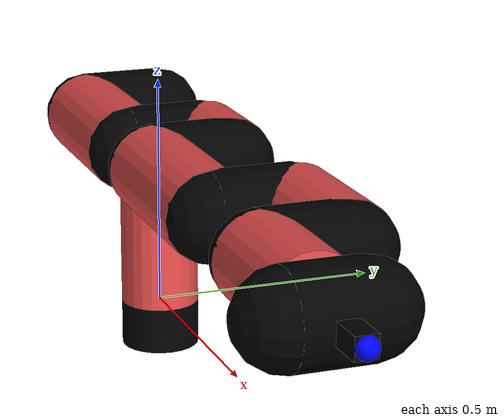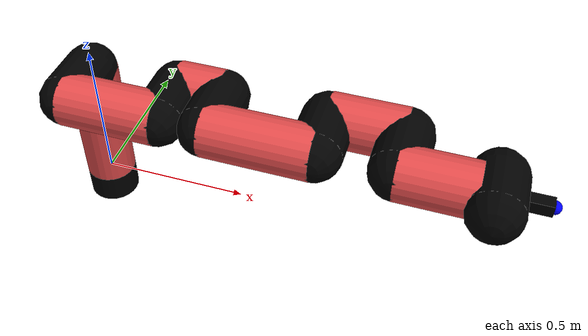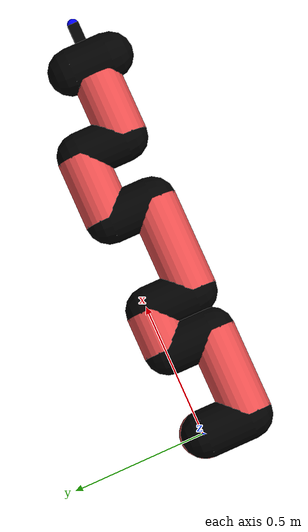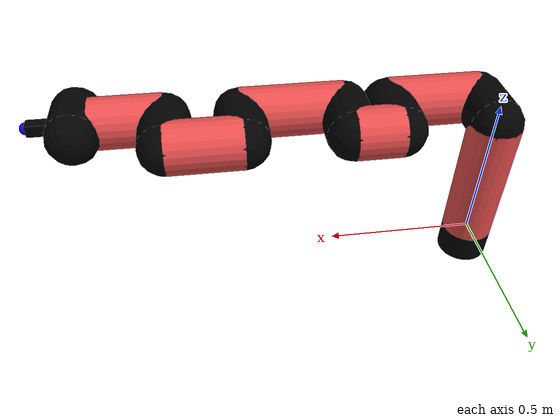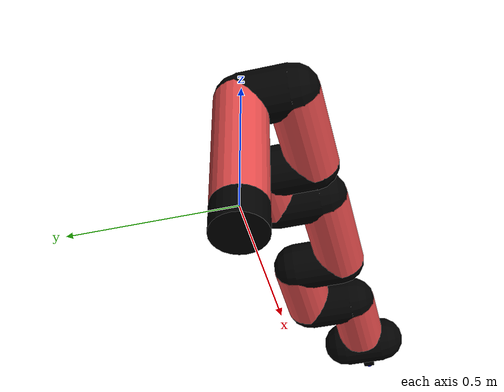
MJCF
<mujoco model="manipulator">
		<compiler angle="degree" coordinate="local" inertiafromgeom="auto" meshdir="meshes/"/>
		<option gravity="0 0 0" integrator="RK4" iterations="30" timestep="0.01"/>

		<default>
		<joint armature="1" limited="true" stiffness="10" damping="15" frictionloss="5.0"/>
		<geom conaffinity="1" condim="3" contype="1" friction=".5 .1 .1" margin="0.002"/>
		<motor ctrllimited="true"/>
		<position ctrllimited="true"/>
		</default>

		<asset>
		<texture builtin="gradient" height="100" rgb1="1.0 1.0 1.0" rgb2="1.0 1.0 1.0" type="skybox" width="100"/>
		<texture builtin="flat" height="32" name="arm_tex" rgb1="0.9 0.3 0.3" type="2d" width="32"/>
		<texture builtin="flat" height="32" name="gripper_tex" rgb1="0.0 0.0 0.0" type="cube" width="32"/>

		<material name="arm_mat" shininess="0.1" specular="0.1" texture="arm_tex"/>
		<material name="gripper_mat" shininess="1" specular="1" texture="gripper_tex"/>
		</asset>

		<worldbody>
		<light cutoff="45" diffuse=".8 .8 .8" dir="0 0.16 -1" directional="false" name="light" pos="0 -2.0 8.0" specular="0.3 0.3 0.3"/>

		<body name="base_link" pos="0 0 -0.1">
		<geom fromto="0 0 0 0 0 0.1" material="arm_mat" name="base_link" rgba="0.0 0.0 0.0 1" size="0.085" type="cylinder"/>
		</body>

		<body name="l1" pos="0 0 0">
<geom fromto="0 0 0 0 0 0.44" material="arm_mat" name="l1" rgba="0.9 0.3 0.3 1" size="0.085" type="cylinder"/>
<geom fromto="0 0 0.44 0 -0.16 0.44" material="arm_mat" name="l1_ex" rgba="0.0 0.0 0.0 1" size="0.085" type="capsule"/>
<joint axis="0 0 1" name="j1" pos="0 0 0" range="-90 90" damping="18.58" frictionloss="11.01"/>

<body name="l2" pos="0 -0.16 0.44">
<geom fromto="0 0 0 0.31 0 0" material="arm_mat" name="l2" rgba="0.9 0.3 0.3 1" size="0.085" type="cylinder"/>
<geom fromto="0.31 0 0 0.31 0.16 0" material="arm_mat" name="l2_ex" rgba="0.0 0.0 0.0 1" size="0.085" type="capsule"/>
<joint axis="0.0 1.0 0.0" name="j2" pos="0 0 0" range="-90 60" damping="23.86" frictionloss="7.48"/>

<body name="l3" pos="0.31 0.16 0">
<geom fromto="0 0 0 0.15 0 0" material="arm_mat" name="l3" rgba="0.9 0.3 0.3 1" size="0.085" type="cylinder"/>
<geom fromto="0.15 0 0 0.15 -0.16 0" material="arm_mat" name="l3_ex" rgba="0.0 0.0 0.0 1" size="0.085" type="capsule"/>
<joint axis="0.0 1.0 0.0" name="j3" pos="0 0 0" range="-30 60" damping="20.7" frictionloss="9.39"/>

<body name="l4" pos="0.15 -0.16 0">
<geom fromto="0 0 0 0.34 0 0" material="arm_mat" name="l4" rgba="0.9 0.3 0.3 1" size="0.085" type="cylinder"/>
<geom fromto="0.34 0 0 0.34 0.16 0" material="arm_mat" name="l4_ex" rgba="0.0 0.0 0.0 1" size="0.085" type="capsule"/>
<joint axis="0.0 1.0 0.0" name="j4" pos="0 0 0" range="-30 60" damping="33.17" frictionloss="13.35"/>

<body name="l5" pos="0.34 0.16 0">
<geom fromto="0 0 0 0.24 0 0" material="arm_mat" name="l5" rgba="0.9 0.3 0.3 1" size="0.085" type="cylinder"/>
<geom fromto="0.24 0 0 0.24 -0.16 0" material="arm_mat" name="l5_ex" rgba="0.0 0.0 0.0 1" size="0.085" type="capsule"/>
<joint axis="0.0 1.0 0.0" name="j5" pos="0 0 0" range="-30 60" damping="31.27" frictionloss="7.73"/>

<body name="l6" pos="0.24 -0.16 0">
<geom fromto="0 0 0 0.23 0 0" material="arm_mat" name="l6" rgba="0.9 0.3 0.3 1" size="0.085" type="cylinder"/>
<joint axis="0.0 1.0 0.0" name="j6" pos="0 0 0" range="-30 60" damping="35.51" frictionloss="12.91"/>

<body name="gripper" pos="0.23 0 0">
<geom fromto="0.05 -0.07 0 0.05 0.07 0" material="gripper_mat" name="gripper" rgba="0.0 0.0 0.0 1" size="0.085" type="capsule"/><joint axis="1 0 0" name="j7" pos="0 0 0" range="-90 90" damping="15" frictionloss="5.0"/><body name="finger" pos="0.1 0 0">
<geom fromto="0 0.0 0 0.1 0.0 0" material="gripper_mat" name="finger" rgba="0.0 0.0 0.0 1" size="0.020 0.06 0.06" type="box"/>
</body>
<site name="current" pos="0.2 0. 0.0" rgba="0. 0. 1.0 1" size="0.02" type="sphere"/>
</body>
</body>
</body>
</body>
</body>
</body>
</body>
</worldbody>
<actuator>
<motor ctrllimited="true" ctrlrange="-1.0 1.0" joint="j1" gear="72.66"/>
<motor ctrllimited="true" ctrlrange="-1.0 1.0" joint="j2" gear="99.97"/>
<motor ctrllimited="true" ctrlrange="-1.0 1.0" joint="j3" gear="41.68"/>
<motor ctrllimited="true" ctrlrange="-1.0 1.0" joint="j4" gear="56.53"/>
<motor ctrllimited="true" ctrlrange="-1.0 1.0" joint="j5" gear="86.86"/>
<motor ctrllimited="true" ctrlrange="-1.0 1.0" joint="j6" gear="104.69"/>
<motor ctrllimited="true" ctrlrange="-1.0 1.0" joint="j7" gear="80"/>
</actuator>
</mujoco>
